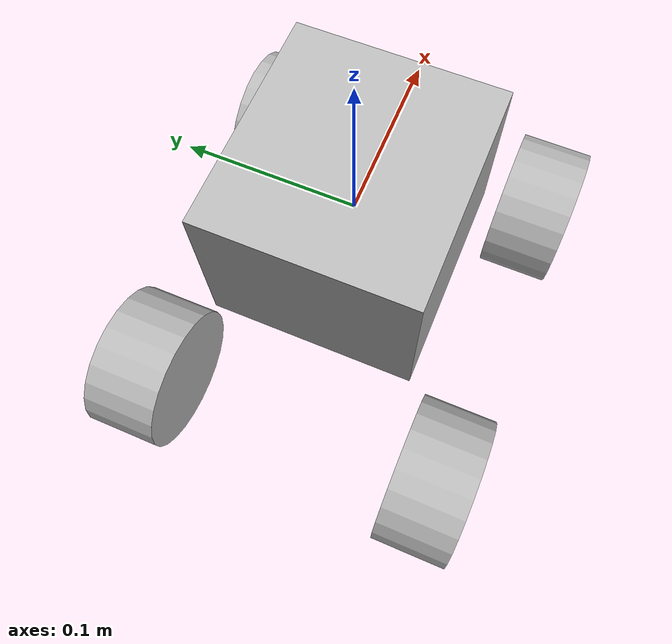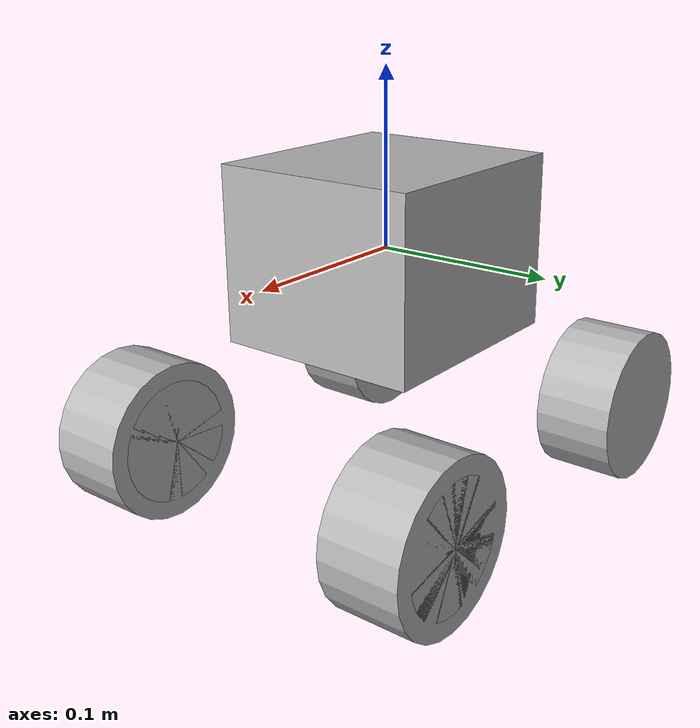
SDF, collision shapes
<sdf version='1.11'>
  <model name='ackermann_drive'>
    <link name='base_link'>
      <inertial>
        <pose>0 0 0 0 0 0</pose>
        <mass>2.1556999999999999</mass>
        <inertia>
          <ixx>0.23999999999999999</ixx>
          <ixy>0</ixy>
          <ixz>0</ixz>
          <iyy>0.95999999999999996</iyy>
          <iyz>0</iyz>
          <izz>0.95999999999999996</izz>
        </inertia>
      </inertial>
      <collision name='base_link_fixed_joint_lump__chassis_collision'>
        <pose>0 0 0 0 0 0</pose>
        <geometry>
          <box>
            <size>0.13 0.12 0.10000000000000001</size>
          </box>
        </geometry>
      </collision>
      <visual name='base_link_fixed_joint_lump__chassis_visual'>
        <pose>0 0 -0.14999999999999999 0 0 1.5700000000000001</pose>
        <geometry>
          <mesh>
            <scale>1 1 1</scale>
            <uri>model://limo_base.dae</uri>
          </mesh>
        </geometry>
      </visual>
    </link>
    <joint name='left_wheel_steering_joint' type='revolute'>
      <pose relative_to='base_link'>0.10000000000000001 0.070000000000000007 -0.100998 0 0 0</pose>
      <parent>base_link</parent>
      <child>left_wheel_steering</child>
      <axis>
        <xyz>0 0 1</xyz>
        <limit>
          <lower>-0.52359876699999996</lower>
          <upper>0.52359876699999996</upper>
          <effort>5</effort>
          <velocity>0.5</velocity>
        </limit>
        <dynamics>
          <damping>1</damping>
          <friction>2</friction>
          <spring_reference>0</spring_reference>
          <spring_stiffness>0</spring_stiffness>
        </dynamics>
      </axis>
    </joint>
    <link name='left_wheel_steering'>
      <pose relative_to='left_wheel_steering_joint'>0 0 0 0 0 0</pose>
      <inertial>
        <pose>0 0 0 0 0 0</pose>
        <mass>0.25</mass>
        <inertia>
          <ixx>0.0052500000000000003</ixx>
          <ixy>0</ixy>
          <ixz>0</ixz>
          <iyy>0.00035</iyy>
          <iyz>0</iyz>
          <izz>0.0052500000000000003</izz>
        </inertia>
      </inertial>
      <collision name='left_wheel_steering_collision'>
        <pose>0 0.022499999999999999 0 1.5700000000000001 0 0</pose>
        <geometry>
          <cylinder>
            <length>0.044999999999999998</length>
            <radius>0.035000000000000003</radius>
          </cylinder>
        </geometry>
      </collision>
      <visual name='left_wheel_steering_visual'>
        <pose>0 0 0 0 0 0</pose>
        <geometry>
          <cylinder>
            <length>0.0001</length>
            <radius>0.0001</radius>
          </cylinder>
        </geometry>
      </visual>
    </link>
    <joint name='front_left_wheel_joint' type='revolute'>
      <pose relative_to='left_wheel_steering'>0 0 0 0 0 0</pose>
      <parent>left_wheel_steering</parent>
      <child>front_left_wheel</child>
      <axis>
        <xyz>0 1 0</xyz>
        <limit>
          <lower>-inf</lower>
          <upper>inf</upper>
        </limit>
        <dynamics>
          <spring_reference>0</spring_reference>
          <spring_stiffness>0</spring_stiffness>
        </dynamics>
      </axis>
    </joint>
    <link name='front_left_wheel'>
      <pose relative_to='front_left_wheel_joint'>0 0 0 0 0 0</pose>
      <inertial>
        <pose>0 0 0 0 0 0</pose>
        <mass>0.25</mass>
        <inertia>
          <ixx>0.0052500000000000003</ixx>
          <ixy>0</ixy>
          <ixz>0</ixz>
          <iyy>0.00035</iyy>
          <iyz>0</iyz>
          <izz>0.0052500000000000003</izz>
        </inertia>
      </inertial>
      <collision name='front_left_wheel_collision'>
        <pose>0 0.022499999999999999 0 1.5700000000000001 0 0</pose>
        <geometry>
          <cylinder>
            <length>0.044999999999999998</length>
            <radius>0.044999999999999998</radius>
          </cylinder>
        </geometry>
      </collision>
      <visual name='front_left_wheel_visual'>
        <pose>0 0 0 0 0 0</pose>
        <geometry>
          <mesh>
            <scale>1 1 1</scale>
            <uri>file:///home/tom/Documents/PhD/sensori_e_sistemi_robotica_2025/install/limo_description/share/limo_description/meshes/limo_wheel.dae</uri>
          </mesh>
        </geometry>
      </visual>
    </link>
    <joint name='rear_left_wheel_joint' type='revolute'>
      <pose relative_to='base_link'>-0.10000000000000001 0.070000000000000007 -0.100998 0 0 0</pose>
      <parent>base_link</parent>
      <child>rear_left_wheel</child>
      <axis>
        <xyz>0 1 0</xyz>
        <limit>
          <lower>-inf</lower>
          <upper>inf</upper>
        </limit>
        <dynamics>
          <spring_reference>0</spring_reference>
          <spring_stiffness>0</spring_stiffness>
        </dynamics>
      </axis>
    </joint>
    <link name='rear_left_wheel'>
      <pose relative_to='rear_left_wheel_joint'>0 0 0 0 0 0</pose>
      <inertial>
        <pose>0 0 0 0 0 0</pose>
        <mass>0.5</mass>
        <inertia>
          <ixx>0.01055</ixx>
          <ixy>0</ixy>
          <ixz>0</ixz>
          <iyy>0.00075000000000000002</iyy>
          <iyz>0</iyz>
          <izz>0.01055</izz>
        </inertia>
      </inertial>
      <collision name='rear_left_wheel_collision'>
        <pose>0 0.022499999999999999 0 1.5700000000000001 0 0</pose>
        <geometry>
          <cylinder>
            <length>0.044999999999999998</length>
            <radius>0.044999999999999998</radius>
          </cylinder>
        </geometry>
      </collision>
      <visual name='rear_left_wheel_visual'>
        <pose>0 0 0 0 0 0</pose>
        <geometry>
          <mesh>
            <scale>1 1 1</scale>
            <uri>model://limo_wheel.dae</uri>
          </mesh>
        </geometry>
      </visual>
    </link>
    <joint name='rear_right_wheel_joint' type='revolute'>
      <pose relative_to='base_link'>-0.10000000000000001 -0.070000000000000007 -0.100998 3.1415899999999999 0 0</pose>
      <parent>base_link</parent>
      <child>rear_right_wheel</child>
      <axis>
        <xyz>0 -1 0</xyz>
        <limit>
          <lower>-inf</lower>
          <upper>inf</upper>
        </limit>
        <dynamics>
          <spring_reference>0</spring_reference>
          <spring_stiffness>0</spring_stiffness>
        </dynamics>
      </axis>
    </joint>
    <link name='rear_right_wheel'>
      <pose relative_to='rear_right_wheel_joint'>0 0 0 0 0 0</pose>
      <inertial>
        <pose>0 0 0 0 0 0</pose>
        <mass>0.5</mass>
        <inertia>
          <ixx>0.01055</ixx>
          <ixy>0</ixy>
          <ixz>0</ixz>
          <iyy>0.00075000000000000002</iyy>
          <iyz>0</iyz>
          <izz>0.01055</izz>
        </inertia>
      </inertial>
      <collision name='rear_right_wheel_collision'>
        <pose>0 0.022499999999999999 0 1.5700000000000001 0 0</pose>
        <geometry>
          <cylinder>
            <length>0.044999999999999998</length>
            <radius>0.044999999999999998</radius>
          </cylinder>
        </geometry>
      </collision>
      <visual name='rear_right_wheel_visual'>
        <pose>0 0 0 0 0 0</pose>
        <geometry>
          <mesh>
            <scale>1 1 1</scale>
            <uri>model://limo_wheel.dae</uri>
          </mesh>
        </geometry>
      </visual>
    </link>
    <joint name='right_wheel_steering_joint' type='revolute'>
      <pose relative_to='base_link'>0.10000000000000001 -0.070000000000000007 -0.100998 3.1415899999999999 0 0</pose>
      <parent>base_link</parent>
      <child>right_wheel_steering</child>
      <axis>
        <xyz>0 0 -1</xyz>
        <limit>
          <lower>-0.52359876699999996</lower>
          <upper>0.52359876699999996</upper>
          <effort>5</effort>
          <velocity>0.5</velocity>
        </limit>
        <dynamics>
          <damping>1</damping>
          <friction>2</friction>
          <spring_reference>0</spring_reference>
          <spring_stiffness>0</spring_stiffness>
        </dynamics>
      </axis>
    </joint>
    <link name='right_wheel_steering'>
      <pose relative_to='right_wheel_steering_joint'>0 0 0 0 0 0</pose>
      <inertial>
        <pose>0 0 0 0 0 0</pose>
        <mass>0.25</mass>
        <inertia>
          <ixx>0.0052500000000000003</ixx>
          <ixy>0</ixy>
          <ixz>0</ixz>
          <iyy>0.00035</iyy>
          <iyz>0</iyz>
          <izz>0.0052500000000000003</izz>
        </inertia>
      </inertial>
      <collision name='right_wheel_steering_collision'>
        <pose>0 0.022499999999999999 0 1.5700000000000001 0 0</pose>
        <geometry>
          <cylinder>
            <length>0.044999999999999998</length>
            <radius>0.035000000000000003</radius>
          </cylinder>
        </geometry>
      </collision>
      <visual name='right_wheel_steering_visual'>
        <pose>0 0 0 0 0 0</pose>
        <geometry>
          <cylinder>
            <length>0.0001</length>
            <radius>0.0001</radius>
          </cylinder>
        </geometry>
      </visual>
    </link>
    <joint name='front_right_wheel_joint' type='revolute'>
      <pose relative_to='right_wheel_steering'>0 0 0 0 0 0</pose>
      <parent>right_wheel_steering</parent>
      <child>front_right_wheel</child>
      <axis>
        <xyz>0 -1 0</xyz>
        <limit>
          <lower>-inf</lower>
          <upper>inf</upper>
        </limit>
        <dynamics>
          <spring_reference>0</spring_reference>
          <spring_stiffness>0</spring_stiffness>
        </dynamics>
      </axis>
    </joint>
    <link name='front_right_wheel'>
      <pose relative_to='front_right_wheel_joint'>0 0 0 0 0 0</pose>
      <inertial>
        <pose>0 0 0 0 0 0</pose>
        <mass>0.25</mass>
        <inertia>
          <ixx>0.0052500000000000003</ixx>
          <ixy>0</ixy>
          <ixz>0</ixz>
          <iyy>0.00035</iyy>
          <iyz>0</iyz>
          <izz>0.0052500000000000003</izz>
        </inertia>
      </inertial>
      <collision name='front_right_wheel_collision'>
        <pose>0 0.022499999999999999 0 1.5700000000000001 0 0</pose>
        <geometry>
          <cylinder>
            <length>0.044999999999999998</length>
            <radius>0.044999999999999998</radius>
          </cylinder>
        </geometry>
      </collision>
      <visual name='front_right_wheel_visual'>
        <pose>0 0 0 0 0 0</pose>
        <geometry>
          <mesh>
            <scale>1 1 1</scale>
            <uri>file:///home/tom/Documents/PhD/sensori_e_sistemi_robotica_2025/install/limo_description/share/limo_description/meshes/limo_wheel.dae</uri>
          </mesh>
        </geometry>
      </visual>
    </link>
    <plugin name='gz_ros2_control::GazeboSimROS2ControlPlugin' filename='gz_ros2_control-system'>
      <parameters>/home/tom/Documents/PhD/sensori_e_sistemi_robotica_2025/install/gz_ros2_control_demos/share/gz_ros2_control_demos/config/ackermann_drive_controller.yaml</parameters>
    </plugin>
    <frame name='chassis_joint' attached_to='base_link'>
      <pose>0 0 0 0 0 0</pose>
    </frame>
    <frame name='chassis' attached_to='chassis_joint'>
      <pose>0 0 0 0 0 0</pose>
    </frame>

  <plugin
    filename="gz-sim-sensors-system"
    name="gz::sim::systems::Sensors">
    <render_engine>ogre2</render_engine>
  </plugin>

  <model name="realsense_d435">
    <pose>0 0 0 0 0 0</pose>
    <self_collide>false</self_collide>
    <static>false</static>
    <link name="realsense_d435/base_link">
      <inertial>
        <pose>0 0 0 0 0 0</pose>
        <mass>0.0615752</mass>
        <inertia>
          <ixx>9.108e-05</ixx>
          <ixy>0</ixy>
          <ixz>0</ixz>
          <iyy>2.51e-06</iyy>
          <iyz>0</iyz>
          <izz>8.931e-05</izz>
        </inertia>
      </inertial>
      <visual name= "realsense_d435/visual">
        <geometry>
          <box>
            <size>0.1 0.02 0.02</size>
          </box>
        </geometry>
      </visual>

      <sensor name="realsense_d435" type="rgbd_camera">
        <pose>0 0 0 0 0 -1.57</pose>
        <update_rate>60</update_rate>
        <topic>/rgbd_camera</topic>
        <camera name="camera">
          <horizontal_fov>1.0472</horizontal_fov>
          <lens>
            <intrinsics>
              <!-- fx = fy = width / ( 2 * tan (hfov / 2 ) ) -->
              <fx>554.25469</fx>
              <fy>554.25469</fy>
              <!-- cx = ( width + 1 ) / 2 -->
              <cx>320.5</cx>
              <!-- cy = ( height + 1 ) / 2 -->
              <cy>240.5</cy>
              <s>0</s>
            </intrinsics>
          </lens>
          <distortion>
            <k1>0.0</k1>
            <k2>0.0</k2>
            <k3>0.0</k3>
            <p1>0.0</p1>
            <p2>0.0</p2>
            <center>0.5 0.5</center>
          </distortion>
          <image>
            <width>640</width>
            <height>480</height>
            <format>R8G8B8</format>
          </image>
          <clip>
            <near>0.5</near>
            <far>40</far>
          </clip>
          <depth_camera>
            <clip>
              <near>0.5</near>
              <far>40</far>
            </clip>
          </depth_camera>
          <noise>
            <type>gaussian</type>
            <mean>0</mean>
            <stddev>0.007</stddev>
          </noise>
        </camera>
      </sensor>

    </link>
  </model>

  </model>
</sdf>
